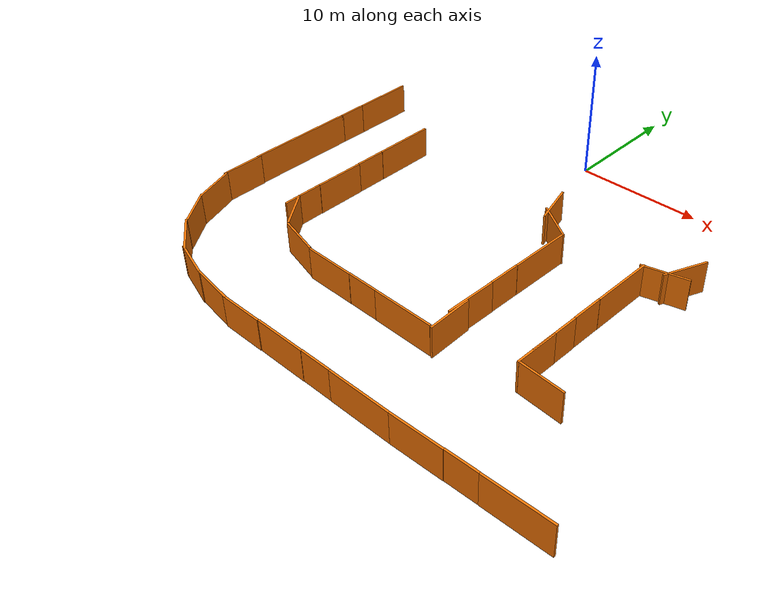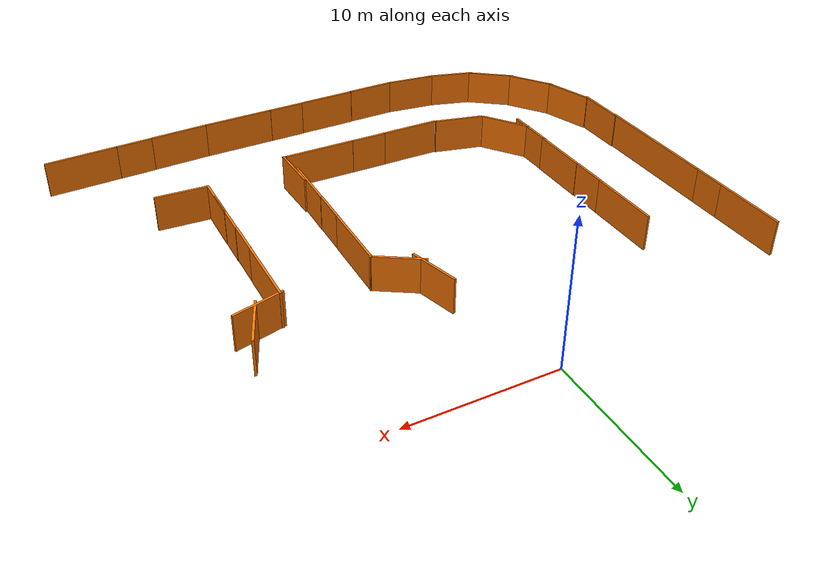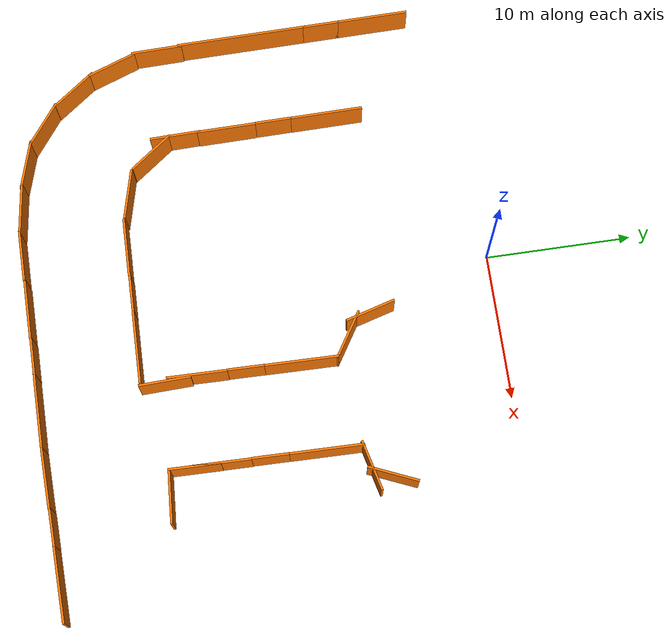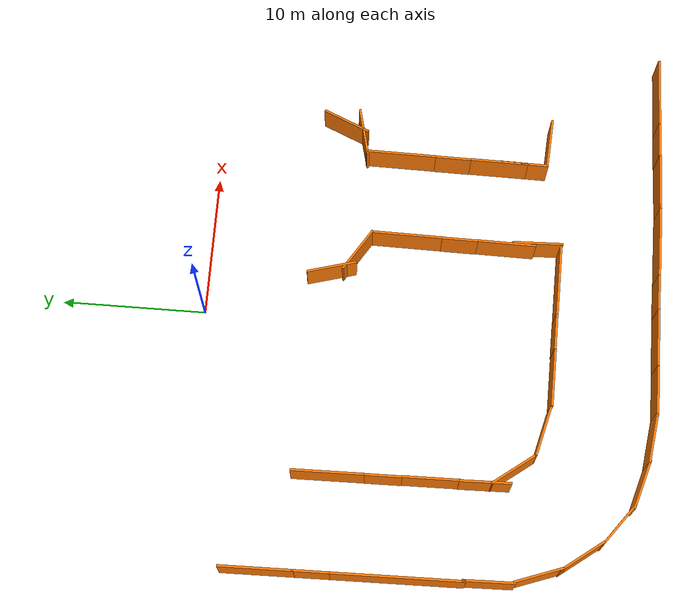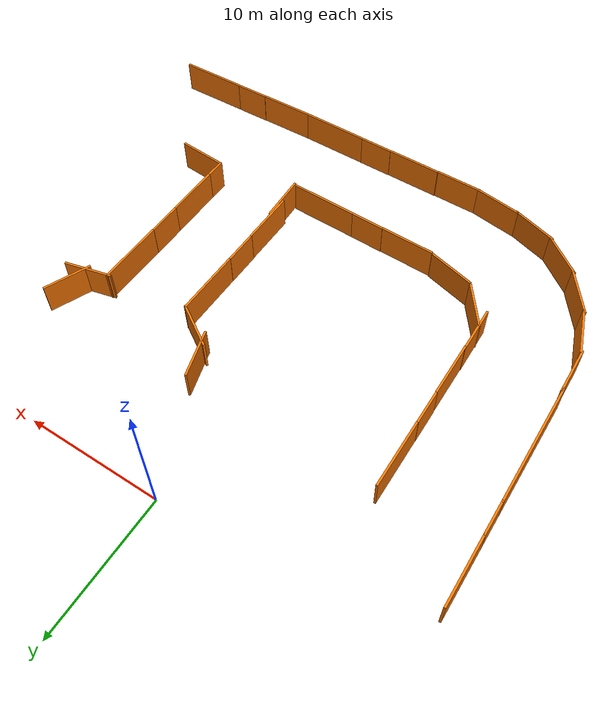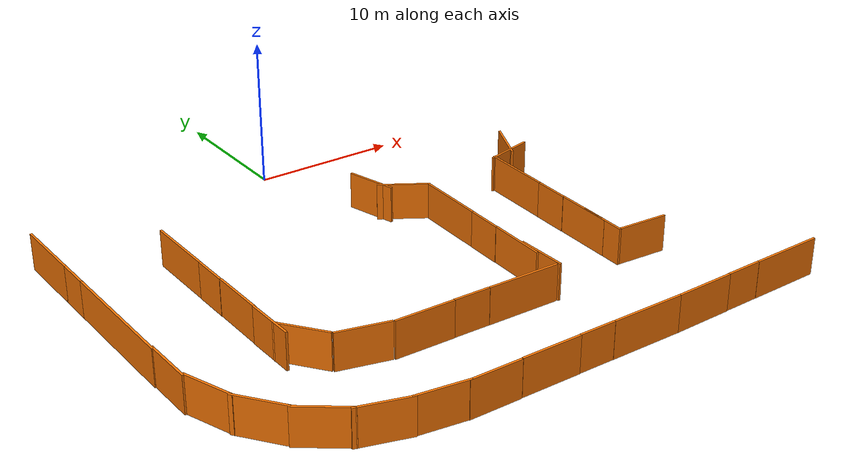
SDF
<sdf version="1.7">
 <world name="cimen_zemin_dunyasi">
  <model name="barier3_0_clone">
   <pose>-20.0892 -10.9776 0 0 -0 1.58461</pose>
   <link name="Wall_5">
    <collision name="Wall_5_Collision">
     <geometry><box><size>9 0.15 2.5</size></box></geometry>
     <pose>0 0 1.25 0 -0 0</pose>
    </collision>
    <visual name="Wall_5_Visual">
     <pose>0 0 1.25 0 -0 0</pose>
     <geometry><box><size>9 0.15 2.5</size></box></geometry>
     <material>
      <script><uri>file://media/materials/scripts/gazebo.material</uri><name>Gazebo/Grey</name></script>
      <ambient>0.996078 0.47451 0.0196078 1</ambient>
     </material>
     <meta><layer>0</layer></meta>
    </visual>
    <pose>-3.6 -2.29057 0 0 -0 0</pose>
   </link>
   <link name="Wall_7">
    <collision name="Wall_7_Collision">
     <geometry><box><size>2.5 0.15 2.5</size></box></geometry>
     <pose>0 0 1.25 0 -0 0</pose>
    </collision>
    <visual name="Wall_7_Visual">
     <pose>0 0 1.25 0 -0 0</pose>
     <geometry><box><size>2.5 0.15 2.5</size></box></geometry>
     <material>
      <script><uri>file://media/materials/scripts/gazebo.material</uri><name>Gazebo/Grey</name></script>
      <ambient>0.996078 0.47451 0.0196078 1</ambient>
     </material>
     <meta><layer>0</layer></meta>
    </visual>
    <pose>2 -2.29057 0 0 -0 0</pose>
   </link>
   <link name="Wall_9">
    <collision name="Wall_9_Collision">
     <geometry><box><size>5 0.15 2.5</size></box></geometry>
     <pose>0 0 1.25 0 -0 0</pose>
    </collision>
    <visual name="Wall_9_Visual">
     <pose>0 0 1.25 0 -0 0</pose>
     <geometry><box><size>5 0.15 2.5</size></box></geometry>
     <material>
      <script><uri>file://media/materials/scripts/gazebo.material</uri><name>Gazebo/Grey</name></script>
      <ambient>0.996078 0.47451 0.0196078 1</ambient>
     </material>
     <meta><layer>0</layer></meta>
    </visual>
    <pose>5.6 -2.29057 0 0 -0 0</pose>
   </link>
   <static>1</static>
  </model>
  <model name="barrier2_clone_0_clone_0">
   <pose>-18.3449 -18.9963 0 0 -0 1.59331</pose>
   <link name="Wall_3">
    <collision name="Wall_3_Collision">
     <geometry><box><size>3.5 0.15 2.5</size></box></geometry>
     <pose>0 0 1.25 0 -0 0</pose>
    </collision>
    <visual name="Wall_3_Visual">
     <pose>0 0 1.25 0 -0 0</pose>
     <geometry><box><size>3.5 0.15 2.5</size></box></geometry>
     <material>
      <script><uri>file://media/materials/scripts/gazebo.material</uri><name>Gazebo/Grey</name></script>
      <ambient>0.996078 0.47451 0.0196078 1</ambient>
     </material>
     <meta><layer>0</layer></meta>
    </visual>
    <pose>-1.55327 -0.720218 0 0 -0 0</pose>
   </link>
   <static>1</static>
  </model>
  <model name="barrier2_clone_0_clone_0_clone">
   <pose>-18.1039 -22.5324 0 0 -0 1.91704</pose>
   <link name="Wall_3">
    <collision name="Wall_3_Collision">
     <geometry><box><size>3.5 0.15 2.5</size></box></geometry>
     <pose>0 0 1.25 0 -0 0</pose>
    </collision>
    <visual name="Wall_3_Visual">
     <pose>0 0 1.25 0 -0 0</pose>
     <geometry><box><size>3.5 0.15 2.5</size></box></geometry>
     <material>
      <script><uri>file://media/materials/scripts/gazebo.material</uri><name>Gazebo/Grey</name></script>
      <ambient>0.996078 0.47451 0.0196078 1</ambient>
     </material>
     <meta><layer>0</layer></meta>
    </visual>
    <pose>-1.55327 -0.720218 0 0 -0 0</pose>
   </link>
   <static>1</static>
  </model>
  <model name="barrier2_clone_0_clone_0_clone_clone">
   <pose>-16.9381 -25.7302 0 0 -0 2.21207</pose>
   <link name="Wall_3">
    <collision name="Wall_3_Collision">
     <geometry><box><size>3.5 0.15 2.5</size></box></geometry>
     <pose>0 0 1.25 0 -0 0</pose>
    </collision>
    <visual name="Wall_3_Visual">
     <pose>0 0 1.25 0 -0 0</pose>
     <geometry><box><size>3.5 0.15 2.5</size></box></geometry>
     <material>
      <script><uri>file://media/materials/scripts/gazebo.material</uri><name>Gazebo/Grey</name></script>
      <ambient>0.996078 0.47451 0.0196078 1</ambient>
     </material>
     <meta><layer>0</layer></meta>
    </visual>
    <pose>-1.55327 -0.720218 0 0 -0 0</pose>
   </link>
   <static>1</static>
  </model>
  <model name="barrier2_clone_0_clone_0_clone_clone_clone">
   <pose>-14.8373 -28.5438 0 0 -0 2.49875</pose>
   <link name="Wall_3">
    <collision name="Wall_3_Collision">
     <geometry><box><size>3.5 0.15 2.5</size></box></geometry>
     <pose>0 0 1.25 0 -0 0</pose>
    </collision>
    <visual name="Wall_3_Visual">
     <pose>0 0 1.25 0 -0 0</pose>
     <geometry><box><size>3.5 0.15 2.5</size></box></geometry>
     <material>
      <script><uri>file://media/materials/scripts/gazebo.material</uri><name>Gazebo/Grey</name></script>
      <ambient>0.996078 0.47451 0.0196078 1</ambient>
     </material>
     <meta><layer>0</layer></meta>
    </visual>
    <pose>-1.55327 -0.720218 0 0 -0 0</pose>
   </link>
   <static>1</static>
  </model>
  <model name="barrier2_clone_0_clone_0_clone_clone_clone_clone">
   <pose>-12.0783 -30.5778 0 0 -0 2.85028</pose>
   <link name="Wall_3">
    <collision name="Wall_3_Collision">
     <geometry><box><size>3.5 0.15 2.5</size></box></geometry>
     <pose>0 0 1.25 0 -0 0</pose>
    </collision>
    <visual name="Wall_3_Visual">
     <pose>0 0 1.25 0 -0 0</pose>
     <geometry><box><size>3.5 0.15 2.5</size></box></geometry>
     <material>
      <script><uri>file://media/materials/scripts/gazebo.material</uri><name>Gazebo/Grey</name></script>
      <ambient>0.996078 0.47451 0.0196078 1</ambient>
     </material>
     <meta><layer>0</layer></meta>
    </visual>
    <pose>-1.55327 -0.720218 0 0 -0 0</pose>
   </link>
   <static>1</static>
  </model>
  <model name="barrier2_clone_0_clone_0_clone_clone_clone_clone_clone">
   <pose>-8.84746 -31.4937 0 0 -0 3.00412</pose>
   <link name="Wall_3">
    <collision name="Wall_3_Collision">
     <geometry><box><size>3.5 0.15 2.5</size></box></geometry>
     <pose>0 0 1.25 0 -0 0</pose>
    </collision>
    <visual name="Wall_3_Visual">
     <pose>0 0 1.25 0 -0 0</pose>
     <geometry><box><size>3.5 0.15 2.5</size></box></geometry>
     <material>
      <script><uri>file://media/materials/scripts/gazebo.material</uri><name>Gazebo/Grey</name></script>
      <ambient>0.996078 0.47451 0.0196078 1</ambient>
     </material>
     <meta><layer>0</layer></meta>
    </visual>
    <pose>-1.55327 -0.720218 0 0 -0 0</pose>
   </link>
   <static>1</static>
  </model>
  <model name="barrier2_clone_0_clone_0_clone_clone_clone_clone_clone_clone">
   <pose>-5.48279 -31.9529 0 0 0 -3.14125</pose>
   <link name="Wall_3">
    <collision name="Wall_3_Collision">
     <geometry><box><size>3.5 0.15 2.5</size></box></geometry>
     <pose>0 0 1.25 0 -0 0</pose>
    </collision>
    <visual name="Wall_3_Visual">
     <pose>0 0 1.25 0 -0 0</pose>
     <geometry><box><size>3.5 0.15 2.5</size></box></geometry>
     <material>
      <script><uri>file://media/materials/scripts/gazebo.material</uri><name>Gazebo/Grey</name></script>
      <ambient>0.996078 0.47451 0.0196078 1</ambient>
     </material>
     <meta><layer>0</layer></meta>
    </visual>
    <pose>-1.55327 -0.720218 0 0 -0 0</pose>
   </link>
   <static>1</static>
  </model>
  <model name="barier3_clone_clone_clone_clone_0_clone_clone_clone_clone">
   <link name="Wall_5">
    <pose>-1.25417 -2.31114 0 0 -0 0</pose>
    <inertial>
     <inertia><ixx>0</ixx><ixy>0</ixy><ixz>0</ixz><iyy>0</iyy><iyz>0</iyz><izz>0</izz></inertia>
     <mass>0</mass>
    </inertial>
    <visual name="Wall_5_Visual">
     <pose>0 0 1.25 0 -0 0</pose>
     <geometry><box><size>4.04839 0.15 2.5</size></box></geometry>
     <material>
      <script><uri>file://media/materials/scripts/gazebo.material</uri><name>Gazebo/Grey</name></script>
      <ambient>0.996078 0.47451 0.0196078 1</ambient>
      <shader type="pixel"/>
     </material>
     <meta><layer>0</layer></meta>
    </visual>
    <collision name="Wall_5_Collision">
     <pose>0 0 1.25 0 -0 0</pose>
     <geometry><box><size>4.04839 0.15 2.5</size></box></geometry>
     <surface>
      <friction>
       <ode><mu>1</mu><mu2>1</mu2><fdir1>0 0 0</fdir1><slip1>0</slip1><slip2>0</slip2></ode>
       <torsional>
        <coefficient>1</coefficient>
        <patch_radius>0</patch_radius>
        <surface_radius>0</surface_radius>
        <use_patch_radius>1</use_patch_radius>
        <ode><slip>0</slip></ode>
       </torsional>
      </friction>
      <bounce><restitution_coefficient>0</restitution_coefficient><threshold>1e+06</threshold></bounce>
      <contact>
       <collide_without_contact>0</collide_without_contact>
       <collide_without_contact_bitmask>1</collide_without_contact_bitmask>
       <collide_bitmask>1</collide_bitmask>
       <ode>
        <soft_cfm>0</soft_cfm>
        <soft_erp>0.2</soft_erp>
        <kp>1e+13</kp>
        <kd>1</kd>
        <max_vel>0.01</max_vel>
        <min_depth>0</min_depth>
       </ode>
       <bullet>
        <split_impulse>1</split_impulse>
        <split_impulse_penetration_threshold>-0.01</split_impulse_penetration_threshold>
        <soft_cfm>0</soft_cfm>
        <soft_erp>0.2</soft_erp>
        <kp>1e+13</kp>
        <kd>1</kd>
       </bullet>
      </contact>
     </surface>
    </collision>
   </link>
   <link name="Wall_7">
    <pose>2 -2.29057 0 0 -0 0</pose>
    <visual name="Wall_7_Visual">
     <pose>0 0 1.25 0 -0 0</pose>
     <geometry><box><size>2.5 0.15 2.5</size></box></geometry>
     <material>
      <script><uri>file://media/materials/scripts/gazebo.material</uri><name>Gazebo/Grey</name></script>
      <ambient>0.996078 0.47451 0.0196078 1</ambient>
      <shader type="pixel"/>
     </material>
     <meta><layer>0</layer></meta>
    </visual>
    <collision name="Wall_7_Collision">
     <pose>0 0 1.25 0 -0 0</pose>
     <geometry><box><size>2.5 0.15 2.5</size></box></geometry>
     <surface>
      <friction>
       <ode><mu>1</mu><mu2>1</mu2><fdir1>0 0 0</fdir1><slip1>0</slip1><slip2>0</slip2></ode>
       <torsional>
        <coefficient>1</coefficient>
        <patch_radius>0</patch_radius>
        <surface_radius>0</surface_radius>
        <use_patch_radius>1</use_patch_radius>
        <ode><slip>0</slip></ode>
       </torsional>
      </friction>
      <bounce><restitution_coefficient>0</restitution_coefficient><threshold>1e+06</threshold></bounce>
      <contact>
       <collide_without_contact>0</collide_without_contact>
       <collide_without_contact_bitmask>1</collide_without_contact_bitmask>
       <collide_bitmask>1</collide_bitmask>
       <ode>
        <soft_cfm>0</soft_cfm>
        <soft_erp>0.2</soft_erp>
        <kp>1e+13</kp>
        <kd>1</kd>
        <max_vel>0.01</max_vel>
        <min_depth>0</min_depth>
       </ode>
       <bullet>
        <split_impulse>1</split_impulse>
        <split_impulse_penetration_threshold>-0.01</split_impulse_penetration_threshold>
        <soft_cfm>0</soft_cfm>
        <soft_erp>0.2</soft_erp>
        <kp>1e+13</kp>
        <kd>1</kd>
       </bullet>
      </contact>
     </surface>
    </collision>
   </link>
   <link name="Wall_9">
    <pose>5.71906 -2.30051 0 0 -0 0</pose>
    <inertial>
     <inertia><ixx>0</ixx><ixy>0</ixy><ixz>0</ixz><iyy>0</iyy><iyz>0</iyz><izz>0</izz></inertia>
     <mass>0</mass>
    </inertial>
    <visual name="Wall_9_Visual">
     <pose>0 0 1.25 0 -0 0</pose>
     <geometry><box><size>4.97607 0.15 2.5</size></box></geometry>
     <material>
      <script><uri>file://media/materials/scripts/gazebo.material</uri><name>Gazebo/Grey</name></script>
      <ambient>0.996078 0.47451 0.0196078 1</ambient>
      <shader type="pixel"/>
     </material>
     <meta><layer>0</layer></meta>
    </visual>
    <collision name="Wall_9_Collision">
     <pose>0 0 1.25 0 -0 0</pose>
     <geometry><box><size>4.97607 0.15 2.5</size></box></geometry>
     <surface>
      <friction>
       <ode><mu>1</mu><mu2>1</mu2><fdir1>0 0 0</fdir1><slip1>0</slip1><slip2>0</slip2></ode>
       <torsional>
        <coefficient>1</coefficient>
        <patch_radius>0</patch_radius>
        <surface_radius>0</surface_radius>
        <use_patch_radius>1</use_patch_radius>
        <ode><slip>0</slip></ode>
       </torsional>
      </friction>
      <bounce><restitution_coefficient>0</restitution_coefficient><threshold>1e+06</threshold></bounce>
      <contact>
       <collide_without_contact>0</collide_without_contact>
       <collide_without_contact_bitmask>1</collide_without_contact_bitmask>
       <collide_bitmask>1</collide_bitmask>
       <ode>
        <soft_cfm>0</soft_cfm>
        <soft_erp>0.2</soft_erp>
        <kp>1e+13</kp>
        <kd>1</kd>
        <max_vel>0.01</max_vel>
        <min_depth>0</min_depth>
       </ode>
       <bullet>
        <split_impulse>1</split_impulse>
        <split_impulse_penetration_threshold>-0.01</split_impulse_penetration_threshold>
        <soft_cfm>0</soft_cfm>
        <soft_erp>0.2</soft_erp>
        <kp>1e+13</kp>
        <kd>1</kd>
       </bullet>
      </contact>
     </surface>
    </collision>
   </link>
   <static>1</static>
   <pose>1.13149 -28.8904 0 0 -0 0</pose>
  </model>
  <model name="barier3_clone_clone_clone_clone_0_clone_clone_clone_clone_clone">
   <link name="Wall_5">
    <pose>-1.25417 -2.31114 0 0 -0 0</pose>
    <inertial>
     <inertia><ixx>0</ixx><ixy>0</ixy><ixz>0</ixz><iyy>0</iyy><iyz>0</iyz><izz>0</izz></inertia>
     <mass>0</mass>
    </inertial>
    <visual name="Wall_5_Visual">
     <pose>0 0 1.25 0 -0 0</pose>
     <geometry><box><size>4.04839 0.15 2.5</size></box></geometry>
     <material>
      <script><uri>file://media/materials/scripts/gazebo.material</uri><name>Gazebo/Grey</name></script>
      <ambient>0.996078 0.47451 0.0196078 1</ambient>
      <shader type="pixel"/>
     </material>
     <meta><layer>0</layer></meta>
    </visual>
    <collision name="Wall_5_Collision">
     <pose>0 0 1.25 0 -0 0</pose>
     <geometry><box><size>4.04839 0.15 2.5</size></box></geometry>
     <surface>
      <friction>
       <ode><mu>1</mu><mu2>1</mu2><fdir1>0 0 0</fdir1><slip1>0</slip1><slip2>0</slip2></ode>
       <torsional>
        <coefficient>1</coefficient>
        <patch_radius>0</patch_radius>
        <surface_radius>0</surface_radius>
        <use_patch_radius>1</use_patch_radius>
        <ode><slip>0</slip></ode>
       </torsional>
      </friction>
      <bounce><restitution_coefficient>0</restitution_coefficient><threshold>1e+06</threshold></bounce>
      <contact>
       <collide_without_contact>0</collide_without_contact>
       <collide_without_contact_bitmask>1</collide_without_contact_bitmask>
       <collide_bitmask>1</collide_bitmask>
       <ode>
        <soft_cfm>0</soft_cfm>
        <soft_erp>0.2</soft_erp>
        <kp>1e+13</kp>
        <kd>1</kd>
        <max_vel>0.01</max_vel>
        <min_depth>0</min_depth>
       </ode>
       <bullet>
        <split_impulse>1</split_impulse>
        <split_impulse_penetration_threshold>-0.01</split_impulse_penetration_threshold>
        <soft_cfm>0</soft_cfm>
        <soft_erp>0.2</soft_erp>
        <kp>1e+13</kp>
        <kd>1</kd>
       </bullet>
      </contact>
     </surface>
    </collision>
   </link>
   <link name="Wall_7">
    <pose>2 -2.29057 0 0 -0 0</pose>
    <visual name="Wall_7_Visual">
     <pose>0 0 1.25 0 -0 0</pose>
     <geometry><box><size>2.5 0.15 2.5</size></box></geometry>
     <material>
      <script><uri>file://media/materials/scripts/gazebo.material</uri><name>Gazebo/Grey</name></script>
      <ambient>0.996078 0.47451 0.0196078 1</ambient>
      <shader type="pixel"/>
     </material>
     <meta><layer>0</layer></meta>
    </visual>
    <collision name="Wall_7_Collision">
     <pose>0 0 1.25 0 -0 0</pose>
     <geometry><box><size>2.5 0.15 2.5</size></box></geometry>
     <surface>
      <friction>
       <ode><mu>1</mu><mu2>1</mu2><fdir1>0 0 0</fdir1><slip1>0</slip1><slip2>0</slip2></ode>
       <torsional>
        <coefficient>1</coefficient>
        <patch_radius>0</patch_radius>
        <surface_radius>0</surface_radius>
        <use_patch_radius>1</use_patch_radius>
        <ode><slip>0</slip></ode>
       </torsional>
      </friction>
      <bounce><restitution_coefficient>0</restitution_coefficient><threshold>1e+06</threshold></bounce>
      <contact>
       <collide_without_contact>0</collide_without_contact>
       <collide_without_contact_bitmask>1</collide_without_contact_bitmask>
       <collide_bitmask>1</collide_bitmask>
       <ode>
        <soft_cfm>0</soft_cfm>
        <soft_erp>0.2</soft_erp>
        <kp>1e+13</kp>
        <kd>1</kd>
        <max_vel>0.01</max_vel>
        <min_depth>0</min_depth>
       </ode>
       <bullet>
        <split_impulse>1</split_impulse>
        <split_impulse_penetration_threshold>-0.01</split_impulse_penetration_threshold>
        <soft_cfm>0</soft_cfm>
        <soft_erp>0.2</soft_erp>
        <kp>1e+13</kp>
        <kd>1</kd>
       </bullet>
      </contact>
     </surface>
    </collision>
   </link>
   <link name="Wall_9">
    <pose>5.71906 -2.30051 0 0 -0 0</pose>
    <inertial>
     <inertia><ixx>0</ixx><ixy>0</ixy><ixz>0</ixz><iyy>0</iyy><iyz>0</iyz><izz>0</izz></inertia>
     <mass>0</mass>
    </inertial>
    <visual name="Wall_9_Visual">
     <pose>0 0 1.25 0 -0 0</pose>
     <geometry><box><size>4.97607 0.15 2.5</size></box></geometry>
     <material>
      <script><uri>file://media/materials/scripts/gazebo.material</uri><name>Gazebo/Grey</name></script>
      <ambient>0.996078 0.47451 0.0196078 1</ambient>
      <shader type="pixel"/>
     </material>
     <meta><layer>0</layer></meta>
    </visual>
    <collision name="Wall_9_Collision">
     <pose>0 0 1.25 0 -0 0</pose>
     <geometry><box><size>4.97607 0.15 2.5</size></box></geometry>
     <surface>
      <friction>
       <ode><mu>1</mu><mu2>1</mu2><fdir1>0 0 0</fdir1><slip1>0</slip1><slip2>0</slip2></ode>
       <torsional>
        <coefficient>1</coefficient>
        <patch_radius>0</patch_radius>
        <surface_radius>0</surface_radius>
        <use_patch_radius>1</use_patch_radius>
        <ode><slip>0</slip></ode>
       </torsional>
      </friction>
      <bounce><restitution_coefficient>0</restitution_coefficient><threshold>1e+06</threshold></bounce>
      <contact>
       <collide_without_contact>0</collide_without_contact>
       <collide_without_contact_bitmask>1</collide_without_contact_bitmask>
       <collide_bitmask>1</collide_bitmask>
       <ode>
        <soft_cfm>0</soft_cfm>
        <soft_erp>0.2</soft_erp>
        <kp>1e+13</kp>
        <kd>1</kd>
        <max_vel>0.01</max_vel>
        <min_depth>0</min_depth>
       </ode>
       <bullet>
        <split_impulse>1</split_impulse>
        <split_impulse_penetration_threshold>-0.01</split_impulse_penetration_threshold>
        <soft_cfm>0</soft_cfm>
        <soft_erp>0.2</soft_erp>
        <kp>1e+13</kp>
        <kd>1</kd>
       </bullet>
      </contact>
     </surface>
    </collision>
   </link>
   <static>1</static>
   <pose>12.539 -28.8007 0 0 -0 0.025087</pose>
  </model>
  <model name="barrier2_clone_clone_0_clone_0_clone_0">
   <pose>4.3541 -9.91373 0 0 0 -1.29678</pose>
   <link name="Wall_3">
    <collision name="Wall_3_Collision">
     <geometry><box><size>3.5 0.15 2.5</size></box></geometry>
     <pose>0 0 1.25 0 -0 0</pose>
    </collision>
    <visual name="Wall_3_Visual">
     <pose>0 0 1.25 0 -0 0</pose>
     <geometry><box><size>3.5 0.15 2.5</size></box></geometry>
     <material>
      <script><uri>file://media/materials/scripts/gazebo.material</uri><name>Gazebo/Grey</name></script>
      <ambient>0.996078 0.47451 0.0196078 1</ambient>
     </material>
     <meta><layer>0</layer></meta>
    </visual>
    <pose>-1.55327 -0.720218 0 0 -0 0</pose>
   </link>
   <static>1</static>
  </model>
  <model name="barrier2_clone_clone_0_clone_0_clone_1">
   <pose>2.94706 -10.0983 0 0 -0 2.58034</pose>
   <link name="Wall_3">
    <collision name="Wall_3_Collision">
     <geometry><box><size>3.5 0.15 2.5</size></box></geometry>
     <pose>0 0 1.25 0 -0 0</pose>
    </collision>
    <visual name="Wall_3_Visual">
     <pose>0 0 1.25 0 -0 0</pose>
     <geometry><box><size>3.5 0.15 2.5</size></box></geometry>
     <material>
      <script><uri>file://media/materials/scripts/gazebo.material</uri><name>Gazebo/Grey</name></script>
      <ambient>0.996078 0.47451 0.0196078 1</ambient>
     </material>
     <meta><layer>0</layer></meta>
    </visual>
    <pose>-1.55327 -0.720218 0 0 -0 0</pose>
   </link>
   <static>1</static>
  </model>
  <model name="barrier2_clone_clone_0_clone_0_clone_0_clone">
   <pose>14.3688 -10.4879 0 0 0 -1.98062</pose>
   <link name="Wall_3">
    <collision name="Wall_3_Collision">
     <geometry><box><size>3.5 0.15 2.5</size></box></geometry>
     <pose>0 0 1.25 0 -0 0</pose>
    </collision>
    <visual name="Wall_3_Visual">
     <pose>0 0 1.25 0 -0 0</pose>
     <geometry><box><size>3.5 0.15 2.5</size></box></geometry>
     <material>
      <script><uri>file://media/materials/scripts/gazebo.material</uri><name>Gazebo/Grey</name></script>
      <ambient>0.996078 0.47451 0.0196078 1</ambient>
     </material>
     <meta><layer>0</layer></meta>
    </visual>
    <pose>-1.55327 -0.720218 0 0 -0 0</pose>
   </link>
   <static>1</static>
  </model>
  <model name="barrier2_clone_clone_0_clone_0_clone_0_clone_clone">
   <pose>12.2463 -11.1356 0 0 0 -2.90214</pose>
   <link name="Wall_3">
    <collision name="Wall_3_Collision">
     <geometry><box><size>3.5 0.15 2.5</size></box></geometry>
     <pose>0 0 1.25 0 -0 0</pose>
    </collision>
    <visual name="Wall_3_Visual">
     <pose>0 0 1.25 0 -0 0</pose>
     <geometry><box><size>3.5 0.15 2.5</size></box></geometry>
     <material>
      <script><uri>file://media/materials/scripts/gazebo.material</uri><name>Gazebo/Grey</name></script>
      <ambient>0.996078 0.47451 0.0196078 1</ambient>
     </material>
     <meta><layer>0</layer></meta>
    </visual>
    <pose>-1.55327 -0.720218 0 0 -0 0</pose>
   </link>
   <static>1</static>
  </model>
  <model name="barier3_clone_clone_clone_clone_0_clone_clone_clone_clone_0">
   <link name="Wall_5">
    <pose>-1.25417 -2.31114 0 0 -0 0</pose>
    <inertial>
     <inertia><ixx>0</ixx><ixy>0</ixy><ixz>0</ixz><iyy>0</iyy><iyz>0</iyz><izz>0</izz></inertia>
     <mass>0</mass>
    </inertial>
    <visual name="Wall_5_Visual">
     <pose>0 0 1.25 0 -0 0</pose>
     <geometry><box><size>4.04839 0.15 2.5</size></box></geometry>
     <material>
      <script><uri>file://media/materials/scripts/gazebo.material</uri><name>Gazebo/Grey</name></script>
      <ambient>0.996078 0.47451 0.0196078 1</ambient>
      <shader type="pixel"/>
     </material>
     <meta><layer>0</layer></meta>
    </visual>
    <collision name="Wall_5_Collision">
     <pose>0 0 1.25 0 -0 0</pose>
     <geometry><box><size>4.04839 0.15 2.5</size></box></geometry>
     <surface>
      <friction>
       <ode><mu>1</mu><mu2>1</mu2><fdir1>0 0 0</fdir1><slip1>0</slip1><slip2>0</slip2></ode>
       <torsional>
        <coefficient>1</coefficient>
        <patch_radius>0</patch_radius>
        <surface_radius>0</surface_radius>
        <use_patch_radius>1</use_patch_radius>
        <ode><slip>0</slip></ode>
       </torsional>
      </friction>
      <bounce><restitution_coefficient>0</restitution_coefficient><threshold>1e+06</threshold></bounce>
      <contact>
       <collide_without_contact>0</collide_without_contact>
       <collide_without_contact_bitmask>1</collide_without_contact_bitmask>
       <collide_bitmask>1</collide_bitmask>
       <ode>
        <soft_cfm>0</soft_cfm>
        <soft_erp>0.2</soft_erp>
        <kp>1e+13</kp>
        <kd>1</kd>
        <max_vel>0.01</max_vel>
        <min_depth>0</min_depth>
       </ode>
       <bullet>
        <split_impulse>1</split_impulse>
        <split_impulse_penetration_threshold>-0.01</split_impulse_penetration_threshold>
        <soft_cfm>0</soft_cfm>
        <soft_erp>0.2</soft_erp>
        <kp>1e+13</kp>
        <kd>1</kd>
       </bullet>
      </contact>
     </surface>
    </collision>
   </link>
   <link name="Wall_7">
    <pose>2 -2.29057 0 0 -0 0</pose>
    <visual name="Wall_7_Visual">
     <pose>0 0 1.25 0 -0 0</pose>
     <geometry><box><size>2.5 0.15 2.5</size></box></geometry>
     <material>
      <script><uri>file://media/materials/scripts/gazebo.material</uri><name>Gazebo/Grey</name></script>
      <ambient>0.996078 0.47451 0.0196078 1</ambient>
      <shader type="pixel"/>
     </material>
     <meta><layer>0</layer></meta>
    </visual>
    <collision name="Wall_7_Collision">
     <pose>0 0 1.25 0 -0 0</pose>
     <geometry><box><size>2.5 0.15 2.5</size></box></geometry>
     <surface>
      <friction>
       <ode><mu>1</mu><mu2>1</mu2><fdir1>0 0 0</fdir1><slip1>0</slip1><slip2>0</slip2></ode>
       <torsional>
        <coefficient>1</coefficient>
        <patch_radius>0</patch_radius>
        <surface_radius>0</surface_radius>
        <use_patch_radius>1</use_patch_radius>
        <ode><slip>0</slip></ode>
       </torsional>
      </friction>
      <bounce><restitution_coefficient>0</restitution_coefficient><threshold>1e+06</threshold></bounce>
      <contact>
       <collide_without_contact>0</collide_without_contact>
       <collide_without_contact_bitmask>1</collide_without_contact_bitmask>
       <collide_bitmask>1</collide_bitmask>
       <ode>
        <soft_cfm>0</soft_cfm>
        <soft_erp>0.2</soft_erp>
        <kp>1e+13</kp>
        <kd>1</kd>
        <max_vel>0.01</max_vel>
        <min_depth>0</min_depth>
       </ode>
       <bullet>
        <split_impulse>1</split_impulse>
        <split_impulse_penetration_threshold>-0.01</split_impulse_penetration_threshold>
        <soft_cfm>0</soft_cfm>
        <soft_erp>0.2</soft_erp>
        <kp>1e+13</kp>
        <kd>1</kd>
       </bullet>
      </contact>
     </surface>
    </collision>
   </link>
   <link name="Wall_9">
    <pose>5.71906 -2.30051 0 0 -0 0</pose>
    <inertial>
     <inertia><ixx>0</ixx><ixy>0</ixy><ixz>0</ixz><iyy>0</iyy><iyz>0</iyz><izz>0</izz></inertia>
     <mass>0</mass>
    </inertial>
    <visual name="Wall_9_Visual">
     <pose>0 0 1.25 0 -0 0</pose>
     <geometry><box><size>4.97607 0.15 2.5</size></box></geometry>
     <material>
      <script><uri>file://media/materials/scripts/gazebo.material</uri><name>Gazebo/Grey</name></script>
      <ambient>0.996078 0.47451 0.0196078 1</ambient>
      <shader type="pixel"/>
     </material>
     <meta><layer>0</layer></meta>
    </visual>
    <collision name="Wall_9_Collision">
     <pose>0 0 1.25 0 -0 0</pose>
     <geometry><box><size>4.97607 0.15 2.5</size></box></geometry>
     <surface>
      <friction>
       <ode><mu>1</mu><mu2>1</mu2><fdir1>0 0 0</fdir1><slip1>0</slip1><slip2>0</slip2></ode>
       <torsional>
        <coefficient>1</coefficient>
        <patch_radius>0</patch_radius>
        <surface_radius>0</surface_radius>
        <use_patch_radius>1</use_patch_radius>
        <ode><slip>0</slip></ode>
       </torsional>
      </friction>
      <bounce><restitution_coefficient>0</restitution_coefficient><threshold>1e+06</threshold></bounce>
      <contact>
       <collide_without_contact>0</collide_without_contact>
       <collide_without_contact_bitmask>1</collide_without_contact_bitmask>
       <collide_bitmask>1</collide_bitmask>
       <ode>
        <soft_cfm>0</soft_cfm>
        <soft_erp>0.2</soft_erp>
        <kp>1e+13</kp>
        <kd>1</kd>
        <max_vel>0.01</max_vel>
        <min_depth>0</min_depth>
       </ode>
       <bullet>
        <split_impulse>1</split_impulse>
        <split_impulse_penetration_threshold>-0.01</split_impulse_penetration_threshold>
        <soft_cfm>0</soft_cfm>
        <soft_erp>0.2</soft_erp>
        <kp>1e+13</kp>
        <kd>1</kd>
       </bullet>
      </contact>
     </surface>
    </collision>
   </link>
   <static>1</static>
   <pose>9.70371 -18.4802 0 0 -0 1.5555</pose>
  </model>
  <model name="barier3_clone_clone_clone_clone_0_clone_clone_clone_clone_0_clone_1">
   <link name="Wall_5">
    <pose>-1.25417 -2.31114 0 0 -0 0</pose>
    <inertial>
     <inertia><ixx>0</ixx><ixy>0</ixy><ixz>0</ixz><iyy>0</iyy><iyz>0</iyz><izz>0</izz></inertia>
     <mass>0</mass>
    </inertial>
    <visual name="Wall_5_Visual">
     <pose>0 0 1.25 0 -0 0</pose>
     <geometry><box><size>4.04839 0.15 2.5</size></box></geometry>
     <material>
      <script><uri>file://media/materials/scripts/gazebo.material</uri><name>Gazebo/Grey</name></script>
      <ambient>0.996078 0.47451 0.0196078 1</ambient>
      <shader type="pixel"/>
     </material>
     <meta><layer>0</layer></meta>
    </visual>
    <collision name="Wall_5_Collision">
     <pose>0 0 1.25 0 -0 0</pose>
     <geometry><box><size>4.04839 0.15 2.5</size></box></geometry>
     <surface>
      <friction>
       <ode><mu>1</mu><mu2>1</mu2><fdir1>0 0 0</fdir1><slip1>0</slip1><slip2>0</slip2></ode>
       <torsional>
        <coefficient>1</coefficient>
        <patch_radius>0</patch_radius>
        <surface_radius>0</surface_radius>
        <use_patch_radius>1</use_patch_radius>
        <ode><slip>0</slip></ode>
       </torsional>
      </friction>
      <bounce><restitution_coefficient>0</restitution_coefficient><threshold>1e+06</threshold></bounce>
      <contact>
       <collide_without_contact>0</collide_without_contact>
       <collide_without_contact_bitmask>1</collide_without_contact_bitmask>
       <collide_bitmask>1</collide_bitmask>
       <ode>
        <soft_cfm>0</soft_cfm>
        <soft_erp>0.2</soft_erp>
        <kp>1e+13</kp>
        <kd>1</kd>
        <max_vel>0.01</max_vel>
        <min_depth>0</min_depth>
       </ode>
       <bullet>
        <split_impulse>1</split_impulse>
        <split_impulse_penetration_threshold>-0.01</split_impulse_penetration_threshold>
        <soft_cfm>0</soft_cfm>
        <soft_erp>0.2</soft_erp>
        <kp>1e+13</kp>
        <kd>1</kd>
       </bullet>
      </contact>
     </surface>
    </collision>
   </link>
   <link name="Wall_7">
    <pose>2 -2.29057 0 0 -0 0</pose>
    <visual name="Wall_7_Visual">
     <pose>0 0 1.25 0 -0 0</pose>
     <geometry><box><size>2.5 0.15 2.5</size></box></geometry>
     <material>
      <script><uri>file://media/materials/scripts/gazebo.material</uri><name>Gazebo/Grey</name></script>
      <ambient>0.996078 0.47451 0.0196078 1</ambient>
      <shader type="pixel"/>
     </material>
     <meta><layer>0</layer></meta>
    </visual>
    <collision name="Wall_7_Collision">
     <pose>0 0 1.25 0 -0 0</pose>
     <geometry><box><size>2.5 0.15 2.5</size></box></geometry>
     <surface>
      <friction>
       <ode><mu>1</mu><mu2>1</mu2><fdir1>0 0 0</fdir1><slip1>0</slip1><slip2>0</slip2></ode>
       <torsional>
        <coefficient>1</coefficient>
        <patch_radius>0</patch_radius>
        <surface_radius>0</surface_radius>
        <use_patch_radius>1</use_patch_radius>
        <ode><slip>0</slip></ode>
       </torsional>
      </friction>
      <bounce><restitution_coefficient>0</restitution_coefficient><threshold>1e+06</threshold></bounce>
      <contact>
       <collide_without_contact>0</collide_without_contact>
       <collide_without_contact_bitmask>1</collide_without_contact_bitmask>
       <collide_bitmask>1</collide_bitmask>
       <ode>
        <soft_cfm>0</soft_cfm>
        <soft_erp>0.2</soft_erp>
        <kp>1e+13</kp>
        <kd>1</kd>
        <max_vel>0.01</max_vel>
        <min_depth>0</min_depth>
       </ode>
       <bullet>
        <split_impulse>1</split_impulse>
        <split_impulse_penetration_threshold>-0.01</split_impulse_penetration_threshold>
        <soft_cfm>0</soft_cfm>
        <soft_erp>0.2</soft_erp>
        <kp>1e+13</kp>
        <kd>1</kd>
       </bullet>
      </contact>
     </surface>
    </collision>
   </link>
   <link name="Wall_9">
    <pose>5.71906 -2.30051 0 0 -0 0</pose>
    <inertial>
     <inertia><ixx>0</ixx><ixy>0</ixy><ixz>0</ixz><iyy>0</iyy><iyz>0</iyz><izz>0</izz></inertia>
     <mass>0</mass>
    </inertial>
    <visual name="Wall_9_Visual">
     <pose>0 0 1.25 0 -0 0</pose>
     <geometry><box><size>4.97607 0.15 2.5</size></box></geometry>
     <material>
      <script><uri>file://media/materials/scripts/gazebo.material</uri><name>Gazebo/Grey</name></script>
      <ambient>0.996078 0.47451 0.0196078 1</ambient>
      <shader type="pixel"/>
     </material>
     <meta><layer>0</layer></meta>
    </visual>
    <collision name="Wall_9_Collision">
     <pose>0 0 1.25 0 -0 0</pose>
     <geometry><box><size>4.97607 0.15 2.5</size></box></geometry>
     <surface>
      <friction>
       <ode><mu>1</mu><mu2>1</mu2><fdir1>0 0 0</fdir1><slip1>0</slip1><slip2>0</slip2></ode>
       <torsional>
        <coefficient>1</coefficient>
        <patch_radius>0</patch_radius>
        <surface_radius>0</surface_radius>
        <use_patch_radius>1</use_patch_radius>
        <ode><slip>0</slip></ode>
       </torsional>
      </friction>
      <bounce><restitution_coefficient>0</restitution_coefficient><threshold>1e+06</threshold></bounce>
      <contact>
       <collide_without_contact>0</collide_without_contact>
       <collide_without_contact_bitmask>1</collide_without_contact_bitmask>
       <collide_bitmask>1</collide_bitmask>
       <ode>
        <soft_cfm>0</soft_cfm>
        <soft_erp>0.2</soft_erp>
        <kp>1e+13</kp>
        <kd>1</kd>
        <max_vel>0.01</max_vel>
        <min_depth>0</min_depth>
       </ode>
       <bullet>
        <split_impulse>1</split_impulse>
        <split_impulse_penetration_threshold>-0.01</split_impulse_penetration_threshold>
        <soft_cfm>0</soft_cfm>
        <soft_erp>0.2</soft_erp>
        <kp>1e+13</kp>
        <kd>1</kd>
       </bullet>
      </contact>
     </surface>
    </collision>
   </link>
   <static>1</static>
   <pose>3.61319 -19.2952 0 0 -0 1.5555</pose>
  </model>
  <model name="barrier2_clone_clone_0_clone_0_clone_0_clone_clone_clone">
   <pose>12.1512 -23.8891 0 0 -0 3.0748</pose>
   <link name="Wall_3">
    <collision name="Wall_3_Collision">
     <geometry><box><size>3.5 0.15 2.5</size></box></geometry>
     <pose>0 0 1.25 0 -0 0</pose>
    </collision>
    <visual name="Wall_3_Visual">
     <pose>0 0 1.25 0 -0 0</pose>
     <geometry><box><size>3.5 0.15 2.5</size></box></geometry>
     <material>
      <script><uri>file://media/materials/scripts/gazebo.material</uri><name>Gazebo/Grey</name></script>
      <ambient>0.996078 0.47451 0.0196078 1</ambient>
     </material>
     <meta><layer>0</layer></meta>
    </visual>
    <pose>-1.55327 -0.720218 0 0 -0 0</pose>
   </link>
   <static>1</static>
  </model>
  <model name="barrier2_clone_clone_0_clone_0_clone_0_clone_clone_clone_clone">
   <pose>12.6672 -23.0543 0 0 0 -1.58935</pose>
   <link name="Wall_3">
    <collision name="Wall_3_Collision">
     <geometry><box><size>3.5 0.15 2.5</size></box></geometry>
     <pose>0 0 1.25 0 -0 0</pose>
    </collision>
    <visual name="Wall_3_Visual">
     <pose>0 0 1.25 0 -0 0</pose>
     <geometry><box><size>3.5 0.15 2.5</size></box></geometry>
     <material>
      <script><uri>file://media/materials/scripts/gazebo.material</uri><name>Gazebo/Grey</name></script>
      <ambient>0.996078 0.47451 0.0196078 1</ambient>
     </material>
     <meta><layer>0</layer></meta>
    </visual>
    <pose>-1.55327 -0.720218 0 0 -0 0</pose>
   </link>
   <static>1</static>
  </model>
  <model name="barier3_clone_clone_clone_clone_0_clone_clone_clone_clone_0_clone_1_clone">
   <link name="Wall_5">
    <pose>-1.25417 -2.31114 0 0 -0 0</pose>
    <inertial>
     <inertia><ixx>0</ixx><ixy>0</ixy><ixz>0</ixz><iyy>0</iyy><iyz>0</iyz><izz>0</izz></inertia>
     <mass>0</mass>
    </inertial>
    <visual name="Wall_5_Visual">
     <pose>0 0 1.25 0 -0 0</pose>
     <geometry><box><size>4.04839 0.15 2.5</size></box></geometry>
     <material>
      <script><uri>file://media/materials/scripts/gazebo.material</uri><name>Gazebo/Grey</name></script>
      <ambient>0.996078 0.47451 0.0196078 1</ambient>
      <shader type="pixel"/>
     </material>
     <meta><layer>0</layer></meta>
    </visual>
    <collision name="Wall_5_Collision">
     <pose>0 0 1.25 0 -0 0</pose>
     <geometry><box><size>4.04839 0.15 2.5</size></box></geometry>
     <surface>
      <friction>
       <ode><mu>1</mu><mu2>1</mu2><fdir1>0 0 0</fdir1><slip1>0</slip1><slip2>0</slip2></ode>
       <torsional>
        <coefficient>1</coefficient>
        <patch_radius>0</patch_radius>
        <surface_radius>0</surface_radius>
        <use_patch_radius>1</use_patch_radius>
        <ode><slip>0</slip></ode>
       </torsional>
      </friction>
      <bounce><restitution_coefficient>0</restitution_coefficient><threshold>1e+06</threshold></bounce>
      <contact>
       <collide_without_contact>0</collide_without_contact>
       <collide_without_contact_bitmask>1</collide_without_contact_bitmask>
       <collide_bitmask>1</collide_bitmask>
       <ode>
        <soft_cfm>0</soft_cfm>
        <soft_erp>0.2</soft_erp>
        <kp>1e+13</kp>
        <kd>1</kd>
        <max_vel>0.01</max_vel>
        <min_depth>0</min_depth>
       </ode>
       <bullet>
        <split_impulse>1</split_impulse>
        <split_impulse_penetration_threshold>-0.01</split_impulse_penetration_threshold>
        <soft_cfm>0</soft_cfm>
        <soft_erp>0.2</soft_erp>
        <kp>1e+13</kp>
        <kd>1</kd>
       </bullet>
      </contact>
     </surface>
    </collision>
   </link>
   <link name="Wall_7">
    <pose>2 -2.29057 0 0 -0 0</pose>
    <visual name="Wall_7_Visual">
     <pose>0 0 1.25 0 -0 0</pose>
     <geometry><box><size>2.5 0.15 2.5</size></box></geometry>
     <material>
      <script><uri>file://media/materials/scripts/gazebo.material</uri><name>Gazebo/Grey</name></script>
      <ambient>0.996078 0.47451 0.0196078 1</ambient>
      <shader type="pixel"/>
     </material>
     <meta><layer>0</layer></meta>
    </visual>
    <collision name="Wall_7_Collision">
     <pose>0 0 1.25 0 -0 0</pose>
     <geometry><box><size>2.5 0.15 2.5</size></box></geometry>
     <surface>
      <friction>
       <ode><mu>1</mu><mu2>1</mu2><fdir1>0 0 0</fdir1><slip1>0</slip1><slip2>0</slip2></ode>
       <torsional>
        <coefficient>1</coefficient>
        <patch_radius>0</patch_radius>
        <surface_radius>0</surface_radius>
        <use_patch_radius>1</use_patch_radius>
        <ode><slip>0</slip></ode>
       </torsional>
      </friction>
      <bounce><restitution_coefficient>0</restitution_coefficient><threshold>1e+06</threshold></bounce>
      <contact>
       <collide_without_contact>0</collide_without_contact>
       <collide_without_contact_bitmask>1</collide_without_contact_bitmask>
       <collide_bitmask>1</collide_bitmask>
       <ode>
        <soft_cfm>0</soft_cfm>
        <soft_erp>0.2</soft_erp>
        <kp>1e+13</kp>
        <kd>1</kd>
        <max_vel>0.01</max_vel>
        <min_depth>0</min_depth>
       </ode>
       <bullet>
        <split_impulse>1</split_impulse>
        <split_impulse_penetration_threshold>-0.01</split_impulse_penetration_threshold>
        <soft_cfm>0</soft_cfm>
        <soft_erp>0.2</soft_erp>
        <kp>1e+13</kp>
        <kd>1</kd>
       </bullet>
      </contact>
     </surface>
    </collision>
   </link>
   <link name="Wall_9">
    <pose>5.71906 -2.30051 0 0 -0 0</pose>
    <inertial>
     <inertia><ixx>0</ixx><ixy>0</ixy><ixz>0</ixz><iyy>0</iyy><iyz>0</iyz><izz>0</izz></inertia>
     <mass>0</mass>
    </inertial>
    <visual name="Wall_9_Visual">
     <pose>0 0 1.25 0 -0 0</pose>
     <geometry><box><size>4.97607 0.15 2.5</size></box></geometry>
     <material>
      <script><uri>file://media/materials/scripts/gazebo.material</uri><name>Gazebo/Grey</name></script>
      <ambient>0.996078 0.47451 0.0196078 1</ambient>
      <shader type="pixel"/>
     </material>
     <meta><layer>0</layer></meta>
    </visual>
    <collision name="Wall_9_Collision">
     <pose>0 0 1.25 0 -0 0</pose>
     <geometry><box><size>4.97607 0.15 2.5</size></box></geometry>
     <surface>
      <friction>
       <ode><mu>1</mu><mu2>1</mu2><fdir1>0 0 0</fdir1><slip1>0</slip1><slip2>0</slip2></ode>
       <torsional>
        <coefficient>1</coefficient>
        <patch_radius>0</patch_radius>
        <surface_radius>0</surface_radius>
        <use_patch_radius>1</use_patch_radius>
        <ode><slip>0</slip></ode>
       </torsional>
      </friction>
      <bounce><restitution_coefficient>0</restitution_coefficient><threshold>1e+06</threshold></bounce>
      <contact>
       <collide_without_contact>0</collide_without_contact>
       <collide_without_contact_bitmask>1</collide_without_contact_bitmask>
       <collide_bitmask>1</collide_bitmask>
       <ode>
        <soft_cfm>0</soft_cfm>
        <soft_erp>0.2</soft_erp>
        <kp>1e+13</kp>
        <kd>1</kd>
        <max_vel>0.01</max_vel>
        <min_depth>0</min_depth>
       </ode>
       <bullet>
        <split_impulse>1</split_impulse>
        <split_impulse_penetration_threshold>-0.01</split_impulse_penetration_threshold>
        <soft_cfm>0</soft_cfm>
        <soft_erp>0.2</soft_erp>
        <kp>1e+13</kp>
        <kd>1</kd>
       </bullet>
      </contact>
     </surface>
    </collision>
   </link>
   <static>1</static>
   <pose>-13.4058 -15.2411 0 0 -0 1.58343</pose>
  </model>
  <model name="barrier2_clone_0_clone_0_clone_0">
   <pose>-11.7978 -18.4539 0 0 -0 1.59331</pose>
   <link name="Wall_3">
    <collision name="Wall_3_Collision">
     <geometry><box><size>3.5 0.15 2.5</size></box></geometry>
     <pose>0 0 1.25 0 -0 0</pose>
    </collision>
    <visual name="Wall_3_Visual">
     <pose>0 0 1.25 0 -0 0</pose>
     <geometry><box><size>3.5 0.15 2.5</size></box></geometry>
     <material>
      <script><uri>file://media/materials/scripts/gazebo.material</uri><name>Gazebo/Grey</name></script>
      <ambient>0.996078 0.47451 0.0196078 1</ambient>
     </material>
     <meta><layer>0</layer></meta>
    </visual>
    <pose>-1.55327 -0.720218 0 0 -0 0</pose>
   </link>
   <static>1</static>
  </model>
  <model name="barrier2_clone_0_clone_0_clone_0_clone">
   <pose>-11.556 -20.9702 0 0 -0 2.21497</pose>
   <link name="Wall_3">
    <collision name="Wall_3_Collision">
     <geometry><box><size>3.5 0.15 2.5</size></box></geometry>
     <pose>0 0 1.25 0 -0 0</pose>
    </collision>
    <visual name="Wall_3_Visual">
     <pose>0 0 1.25 0 -0 0</pose>
     <geometry><box><size>3.5 0.15 2.5</size></box></geometry>
     <material>
      <script><uri>file://media/materials/scripts/gazebo.material</uri><name>Gazebo/Grey</name></script>
      <ambient>0.996078 0.47451 0.0196078 1</ambient>
     </material>
     <meta><layer>0</layer></meta>
    </visual>
    <pose>-1.55327 -0.720218 0 0 -0 0</pose>
   </link>
   <static>1</static>
  </model>
  <model name="barrier2_clone_0_clone_0_clone_0_clone_clone">
   <pose>-8.95625 -23.9915 0 0 -0 2.89476</pose>
   <link name="Wall_3">
    <collision name="Wall_3_Collision">
     <geometry><box><size>3.5 0.15 2.5</size></box></geometry>
     <pose>0 0 1.25 0 -0 0</pose>
    </collision>
    <visual name="Wall_3_Visual">
     <pose>0 0 1.25 0 -0 0</pose>
     <geometry><box><size>3.5 0.15 2.5</size></box></geometry>
     <material>
      <script><uri>file://media/materials/scripts/gazebo.material</uri><name>Gazebo/Grey</name></script>
      <ambient>0.996078 0.47451 0.0196078 1</ambient>
     </material>
     <meta><layer>0</layer></meta>
    </visual>
    <pose>-1.55327 -0.720218 0 0 -0 0</pose>
   </link>
   <static>1</static>
  </model>
  <model name="barier3_clone_clone_clone_clone_0_clone_clone_clone_clone_0_clone_1_clone_clone">
   <link name="Wall_5">
    <pose>-1.25417 -2.31114 0 0 -0 0</pose>
    <inertial>
     <inertia><ixx>0</ixx><ixy>0</ixy><ixz>0</ixz><iyy>0</iyy><iyz>0</iyz><izz>0</izz></inertia>
     <mass>0</mass>
    </inertial>
    <visual name="Wall_5_Visual">
     <pose>0 0 1.25 0 -0 0</pose>
     <geometry><box><size>4.04839 0.15 2.5</size></box></geometry>
     <material>
      <script><uri>file://media/materials/scripts/gazebo.material</uri><name>Gazebo/Grey</name></script>
      <ambient>0.996078 0.47451 0.0196078 1</ambient>
      <shader type="pixel"/>
     </material>
     <meta><layer>0</layer></meta>
    </visual>
    <collision name="Wall_5_Collision">
     <pose>0 0 1.25 0 -0 0</pose>
     <geometry><box><size>4.04839 0.15 2.5</size></box></geometry>
     <surface>
      <friction>
       <ode><mu>1</mu><mu2>1</mu2><fdir1>0 0 0</fdir1><slip1>0</slip1><slip2>0</slip2></ode>
       <torsional>
        <coefficient>1</coefficient>
        <patch_radius>0</patch_radius>
        <surface_radius>0</surface_radius>
        <use_patch_radius>1</use_patch_radius>
        <ode><slip>0</slip></ode>
       </torsional>
      </friction>
      <bounce><restitution_coefficient>0</restitution_coefficient><threshold>1e+06</threshold></bounce>
      <contact>
       <collide_without_contact>0</collide_without_contact>
       <collide_without_contact_bitmask>1</collide_without_contact_bitmask>
       <collide_bitmask>1</collide_bitmask>
       <ode>
        <soft_cfm>0</soft_cfm>
        <soft_erp>0.2</soft_erp>
        <kp>1e+13</kp>
        <kd>1</kd>
        <max_vel>0.01</max_vel>
        <min_depth>0</min_depth>
       </ode>
       <bullet>
        <split_impulse>1</split_impulse>
        <split_impulse_penetration_threshold>-0.01</split_impulse_penetration_threshold>
        <soft_cfm>0</soft_cfm>
        <soft_erp>0.2</soft_erp>
        <kp>1e+13</kp>
        <kd>1</kd>
       </bullet>
      </contact>
     </surface>
    </collision>
   </link>
   <link name="Wall_7">
    <pose>2 -2.29057 0 0 -0 0</pose>
    <visual name="Wall_7_Visual">
     <pose>0 0 1.25 0 -0 0</pose>
     <geometry><box><size>2.5 0.15 2.5</size></box></geometry>
     <material>
      <script><uri>file://media/materials/scripts/gazebo.material</uri><name>Gazebo/Grey</name></script>
      <ambient>0.996078 0.47451 0.0196078 1</ambient>
      <shader type="pixel"/>
     </material>
     <meta><layer>0</layer></meta>
    </visual>
    <collision name="Wall_7_Collision">
     <pose>0 0 1.25 0 -0 0</pose>
     <geometry><box><size>2.5 0.15 2.5</size></box></geometry>
     <surface>
      <friction>
       <ode><mu>1</mu><mu2>1</mu2><fdir1>0 0 0</fdir1><slip1>0</slip1><slip2>0</slip2></ode>
       <torsional>
        <coefficient>1</coefficient>
        <patch_radius>0</patch_radius>
        <surface_radius>0</surface_radius>
        <use_patch_radius>1</use_patch_radius>
        <ode><slip>0</slip></ode>
       </torsional>
      </friction>
      <bounce><restitution_coefficient>0</restitution_coefficient><threshold>1e+06</threshold></bounce>
      <contact>
       <collide_without_contact>0</collide_without_contact>
       <collide_without_contact_bitmask>1</collide_without_contact_bitmask>
       <collide_bitmask>1</collide_bitmask>
       <ode>
        <soft_cfm>0</soft_cfm>
        <soft_erp>0.2</soft_erp>
        <kp>1e+13</kp>
        <kd>1</kd>
        <max_vel>0.01</max_vel>
        <min_depth>0</min_depth>
       </ode>
       <bullet>
        <split_impulse>1</split_impulse>
        <split_impulse_penetration_threshold>-0.01</split_impulse_penetration_threshold>
        <soft_cfm>0</soft_cfm>
        <soft_erp>0.2</soft_erp>
        <kp>1e+13</kp>
        <kd>1</kd>
       </bullet>
      </contact>
     </surface>
    </collision>
   </link>
   <link name="Wall_9">
    <pose>5.71906 -2.30051 0 0 -0 0</pose>
    <inertial>
     <inertia><ixx>0</ixx><ixy>0</ixy><ixz>0</ixz><iyy>0</iyy><iyz>0</iyz><izz>0</izz></inertia>
     <mass>0</mass>
    </inertial>
    <visual name="Wall_9_Visual">
     <pose>0 0 1.25 0 -0 0</pose>
     <geometry><box><size>4.97607 0.15 2.5</size></box></geometry>
     <material>
      <script><uri>file://media/materials/scripts/gazebo.material</uri><name>Gazebo/Grey</name></script>
      <ambient>0.996078 0.47451 0.0196078 1</ambient>
      <shader type="pixel"/>
     </material>
     <meta><layer>0</layer></meta>
    </visual>
    <collision name="Wall_9_Collision">
     <pose>0 0 1.25 0 -0 0</pose>
     <geometry><box><size>4.97607 0.15 2.5</size></box></geometry>
     <surface>
      <friction>
       <ode><mu>1</mu><mu2>1</mu2><fdir1>0 0 0</fdir1><slip1>0</slip1><slip2>0</slip2></ode>
       <torsional>
        <coefficient>1</coefficient>
        <patch_radius>0</patch_radius>
        <surface_radius>0</surface_radius>
        <use_patch_radius>1</use_patch_radius>
        <ode><slip>0</slip></ode>
       </torsional>
      </friction>
      <bounce><restitution_coefficient>0</restitution_coefficient><threshold>1e+06</threshold></bounce>
      <contact>
       <collide_without_contact>0</collide_without_contact>
       <collide_without_contact_bitmask>1</collide_without_contact_bitmask>
       <collide_bitmask>1</collide_bitmask>
       <ode>
        <soft_cfm>0</soft_cfm>
        <soft_erp>0.2</soft_erp>
        <kp>1e+13</kp>
        <kd>1</kd>
        <max_vel>0.01</max_vel>
        <min_depth>0</min_depth>
       </ode>
       <bullet>
        <split_impulse>1</split_impulse>
        <split_impulse_penetration_threshold>-0.01</split_impulse_penetration_threshold>
        <soft_cfm>0</soft_cfm>
        <soft_erp>0.2</soft_erp>
        <kp>1e+13</kp>
        <kd>1</kd>
       </bullet>
      </contact>
     </surface>
    </collision>
   </link>
   <static>1</static>
   <pose>-2.20684 -21.9097 0 0 0 -0.017461</pose>
  </model>
  <model name="barrier2_clone_clone_0_clone_0_clone_1_clone">
   <pose>5.29339 -21.2074 0 0 -0 1.60287</pose>
   <link name="Wall_3">
    <collision name="Wall_3_Collision">
     <geometry><box><size>3.5 0.15 2.5</size></box></geometry>
     <pose>0 0 1.25 0 -0 0</pose>
    </collision>
    <visual name="Wall_3_Visual">
     <pose>0 0 1.25 0 -0 0</pose>
     <geometry><box><size>3.5 0.15 2.5</size></box></geometry>
     <material>
      <script><uri>file://media/materials/scripts/gazebo.material</uri><name>Gazebo/Grey</name></script>
      <ambient>0.996078 0.47451 0.0196078 1</ambient>
     </material>
     <meta><layer>0</layer></meta>
    </visual>
    <pose>-1.55327 -0.720218 0 0 -0 0</pose>
   </link>
   <static>1</static>
  </model>
 </world>
</sdf>
